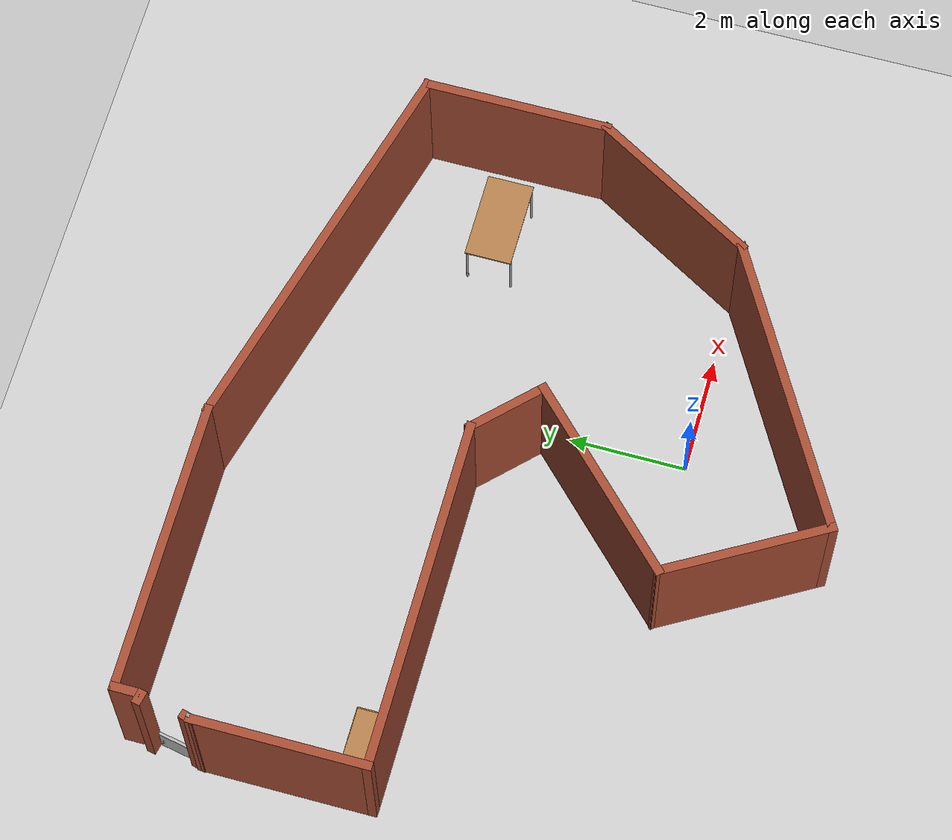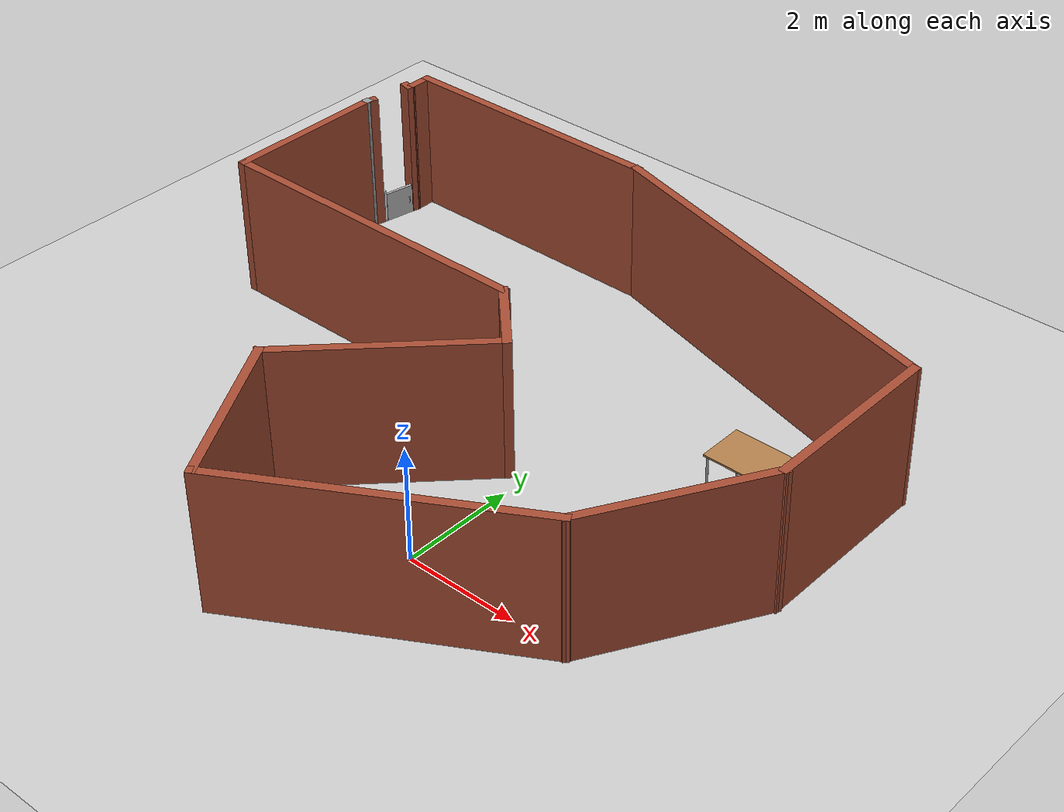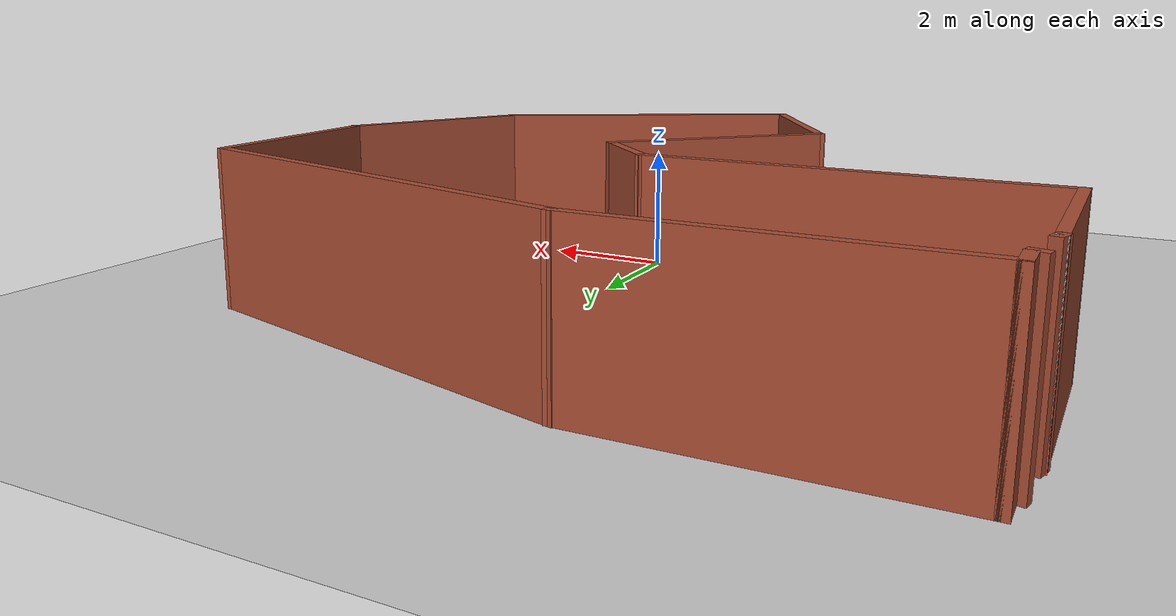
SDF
<sdf version="1.7">
 <world name="default">
  <plugin name="gazebo_occupancy_map" filename="libgazebo_2Dmap_plugin.so">
   <map_resolution>0.05</map_resolution>
   <map_height>0.132</map_height>
   <map_size_x>15</map_size_x>
   <map_size_y>15</map_size_y>
   <init_robot_x>-2.0</init_robot_x>
   <init_robot_y>-0.5</init_robot_y>
  </plugin>
  <light name="sun" type="directional">
   <pose>0 0 10 0 -0 0</pose>
   <diffuse>0.8 0.8 0.8 1</diffuse>
   <specular>0.2 0.2 0.2 1</specular>
   <attenuation>
    <range>1000</range>
    <constant>0.9</constant>
    <linear>0.01</linear>
    <quadratic>0.001</quadratic>
   </attenuation>
   <direction>-0.5 0.1 -0.9</direction>
   <spot><inner_angle>0</inner_angle><outer_angle>0</outer_angle><falloff>0</falloff></spot>
  </light>
  <model name="ground_plane">
   <static>1</static>
   <link name="link">
    <collision name="collision">
     <geometry><plane><normal>0 0 1</normal><size>100 100</size></plane></geometry>
     <surface>
      <contact><collide_bitmask>65535</collide_bitmask></contact>
      <friction><ode><mu>100</mu><mu2>50</mu2></ode></friction>
     </surface>
    </collision>
    <visual name="visual">
     <cast_shadows>0</cast_shadows>
     <geometry><plane><normal>0 0 1</normal><size>100 100</size></plane></geometry>
     <material>
      <script><uri>file://media/materials/scripts/gazebo.material</uri><name>Gazebo/Grey</name></script>
     </material>
    </visual>
   </link>
  </model>
  <gravity>0 0 -9.8</gravity>
  <magnetic_field>6e-06 2.3e-05 -4.2e-05</magnetic_field>
  <atmosphere type="adiabatic"/>
  <physics type="ode">
   <max_step_size>0.001</max_step_size>
   <real_time_factor>1</real_time_factor>
   <real_time_update_rate>1000</real_time_update_rate>
  </physics>
  <scene><ambient>0.4 0.4 0.4 1</ambient><background>0.7 0.7 0.7 1</background><shadows>1</shadows></scene>
  <spherical_coordinates>
   <surface_model>EARTH_WGS84</surface_model>
   <latitude_deg>0</latitude_deg>
   <longitude_deg>0</longitude_deg>
   <elevation>0</elevation>
   <heading_deg>0</heading_deg>
  </spherical_coordinates>
  <model name="c-shaped-room">
   <pose>-1.22776 2.48123 0 0 -0 0</pose>
   <link name="Wall_0">
    <collision name="Wall_0_Collision">
     <geometry><box><size>0.5 0.15 2.5</size></box></geometry>
     <pose>0 0 1.25 0 -0 0</pose>
    </collision>
    <visual name="Wall_0_Visual">
     <pose>0 0 1.25 0 -0 0</pose>
     <geometry><box><size>0.5 0.15 2.5</size></box></geometry>
     <material>
      <script><uri>file://media/materials/scripts/gazebo.material</uri><name>Gazebo/Bricks</name></script>
      <ambient>1 1 1 1</ambient>
     </material>
     <meta><layer>0</layer></meta>
    </visual>
    <pose>-5.64652 4.83002 0 0 -0 1.5708</pose>
   </link>
   <link name="Wall_1">
    <collision name="Wall_1_Collision">
     <geometry><box><size>5 0.15 2.5</size></box></geometry>
     <pose>0 0 1.25 0 -0 0</pose>
    </collision>
    <visual name="Wall_1_Visual">
     <pose>0 0 1.25 0 -0 0</pose>
     <geometry><box><size>5 0.15 2.5</size></box></geometry>
     <material>
      <script><uri>file://media/materials/scripts/gazebo.material</uri><name>Gazebo/Bricks</name></script>
      <ambient>1 1 1 1</ambient>
     </material>
     <meta><layer>0</layer></meta>
    </visual>
    <pose>-3.22152 5.00502 0 0 -0 0</pose>
   </link>
   <link name="Wall_10">
    <collision name="Wall_10_Collision">
     <geometry><box><size>3 0.15 2.5</size></box></geometry>
     <pose>0 0 1.25 0 -0 0</pose>
    </collision>
    <visual name="Wall_10_Visual">
     <pose>0 0 1.25 0 -0 0</pose>
     <geometry><box><size>3 0.15 2.5</size></box></geometry>
     <material>
      <script><uri>file://media/materials/scripts/gazebo.material</uri><name>Gazebo/Bricks</name></script>
      <ambient>1 1 1 1</ambient>
     </material>
     <meta><layer>0</layer></meta>
    </visual>
    <pose>-5.83067 2.29078 0 0 -0 1.5708</pose>
   </link>
   <link name="Wall_11">
    <collision name="Wall_11_Collision">
     <geometry><box><size>0.15 0.15 2.5</size></box></geometry>
     <pose>0 0 1.25 0 -0 0</pose>
    </collision>
    <visual name="Wall_11_Visual">
     <pose>0 0 1.25 0 -0 0</pose>
     <geometry><box><size>0.15 0.15 2.5</size></box></geometry>
     <material>
      <script><uri>file://media/materials/scripts/gazebo.material</uri><name>Gazebo/Grey</name></script>
      <ambient>1 1 1 1</ambient>
     </material>
     <meta><layer>0</layer></meta>
    </visual>
    <pose>-5.83067 3.71578 0 0 -0 0</pose>
   </link>
   <link name="Wall_12">
    <collision name="Wall_12_Collision">
     <geometry><box><size>0.25 0.15 2.5</size></box></geometry>
     <pose>0 0 1.25 0 -0 0</pose>
    </collision>
    <visual name="Wall_12_Visual">
     <pose>0 0 1.25 0 -0 0</pose>
     <geometry><box><size>0.25 0.15 2.5</size></box></geometry>
     <material>
      <script><uri>file://media/materials/scripts/gazebo.material</uri><name>Gazebo/Bricks</name></script>
      <ambient>1 1 1 1</ambient>
     </material>
     <meta><layer>0</layer></meta>
    </visual>
    <pose>-5.81773 3.76408 0 0 -0 1.309</pose>
   </link>
   <link name="Wall_2">
    <collision name="Wall_2_Collision">
     <geometry><box><size>7 0.15 2.5</size></box></geometry>
     <pose>0 0 1.25 0 -0 0</pose>
    </collision>
    <visual name="Wall_2_Visual">
     <pose>0 0 1.25 0 -0 0</pose>
     <geometry><box><size>7 0.15 2.5</size></box></geometry>
     <material>
      <script><uri>file://media/materials/scripts/gazebo.material</uri><name>Gazebo/Bricks</name></script>
      <ambient>1 1 1 1</ambient>
     </material>
     <meta><layer>0</layer></meta>
    </visual>
    <pose>2.51178 4.11857 0 0 -0 -0.261799</pose>
   </link>
   <link name="Wall_3">
    <collision name="Wall_3_Collision">
     <geometry><box><size>3.25 0.15 2.5</size></box></geometry>
     <pose>0 0 1.25 0 -0 0</pose>
    </collision>
    <visual name="Wall_3_Visual">
     <pose>0 0 1.25 0 -0 0</pose>
     <geometry><box><size>3.25 0.15 2.5</size></box></geometry>
     <material>
      <script><uri>file://media/materials/scripts/gazebo.material</uri><name>Gazebo/Bricks</name></script>
      <ambient>1 1 1 1</ambient>
     </material>
     <meta><layer>0</layer></meta>
    </visual>
    <pose>5.82007 1.68211 0 0 -0 -1.5708</pose>
   </link>
   <link name="Wall_4">
    <collision name="Wall_4_Collision">
     <geometry><box><size>3.25 0.15 2.5</size></box></geometry>
     <pose>0 0 1.25 0 -0 0</pose>
    </collision>
    <visual name="Wall_4_Visual">
     <pose>0 0 1.25 0 -0 0</pose>
     <geometry><box><size>3.25 0.15 2.5</size></box></geometry>
     <material>
      <script><uri>file://media/materials/scripts/gazebo.material</uri><name>Gazebo/Bricks</name></script>
      <ambient>1 1 1 1</ambient>
     </material>
     <meta><layer>0</layer></meta>
    </visual>
    <pose>5.04507 -1.21023 0 0 -0 -2.0944</pose>
   </link>
   <link name="Wall_5">
    <collision name="Wall_5_Collision">
     <geometry><box><size>5.25 0.15 2.5</size></box></geometry>
     <pose>0 0 1.25 0 -0 0</pose>
    </collision>
    <visual name="Wall_5_Visual">
     <pose>0 0 1.25 0 -0 0</pose>
     <geometry><box><size>5.25 0.15 2.5</size></box></geometry>
     <material>
      <script><uri>file://media/materials/scripts/gazebo.material</uri><name>Gazebo/Bricks</name></script>
      <ambient>1 1 1 1</ambient>
     </material>
     <meta><layer>0</layer></meta>
    </visual>
    <pose>2.06171 -3.82757 0 0 -0 -2.61799</pose>
   </link>
   <link name="Wall_6">
    <collision name="Wall_6_Collision">
     <geometry><box><size>3 0.15 2.5</size></box></geometry>
     <pose>0 0 1.25 0 -0 0</pose>
    </collision>
    <visual name="Wall_6_Visual">
     <pose>0 0 1.25 0 -0 0</pose>
     <geometry><box><size>3 0.15 2.5</size></box></geometry>
     <material>
      <script><uri>file://media/materials/scripts/gazebo.material</uri><name>Gazebo/Bricks</name></script>
      <ambient>1 1 1 1</ambient>
     </material>
     <meta><layer>0</layer></meta>
    </visual>
    <pose>-0.859158 -3.86848 0 0 -0 2.0944</pose>
   </link>
   <link name="Wall_7">
    <collision name="Wall_7_Collision">
     <geometry><box><size>3.75 0.15 2.5</size></box></geometry>
     <pose>0 0 1.25 0 -0 0</pose>
    </collision>
    <visual name="Wall_7_Visual">
     <pose>0 0 1.25 0 -0 0</pose>
     <geometry><box><size>3.75 0.15 2.5</size></box></geometry>
     <material>
      <script><uri>file://media/materials/scripts/gazebo.material</uri><name>Gazebo/Bricks</name></script>
      <ambient>1 1 1 1</ambient>
     </material>
     <meta><layer>0</layer></meta>
    </visual>
    <pose>-0.298866 -1.3616 0 0 -0 0.785398</pose>
   </link>
   <link name="Wall_8">
    <collision name="Wall_8_Collision">
     <geometry><box><size>1.5 0.15 2.5</size></box></geometry>
     <pose>0 0 1.25 0 -0 0</pose>
    </collision>
    <visual name="Wall_8_Visual">
     <pose>0 0 1.25 0 -0 0</pose>
     <geometry><box><size>1.5 0.15 2.5</size></box></geometry>
     <material>
      <script><uri>file://media/materials/scripts/gazebo.material</uri><name>Gazebo/Bricks</name></script>
      <ambient>1 1 1 1</ambient>
     </material>
     <meta><layer>0</layer></meta>
    </visual>
    <pose>0.49663 0.388485 0 0 -0 2.35619</pose>
   </link>
   <link name="Wall_9">
    <collision name="Wall_9_Collision">
     <geometry><box><size>6 0.15 2.5</size></box></geometry>
     <pose>0 0 1.25 0 -0 0</pose>
    </collision>
    <visual name="Wall_9_Visual">
     <pose>0 0 1.25 0 -0 0</pose>
     <geometry><box><size>6 0.15 2.5</size></box></geometry>
     <material>
      <script><uri>file://media/materials/scripts/gazebo.material</uri><name>Gazebo/Bricks</name></script>
      <ambient>1 1 1 1</ambient>
     </material>
     <meta><layer>0</layer></meta>
    </visual>
    <pose>-2.90567 0.865782 0 0 -0 3.14159</pose>
   </link>
   <static>1</static>
  </model>
  <model name="table">
   <static>1</static>
   <link name="link">
    <collision name="surface">
     <pose>0 0 1 0 -0 0</pose>
     <geometry><box><size>1.5 0.8 0.03</size></box></geometry>
     <surface><friction><ode><mu>0.6</mu><mu2>0.6</mu2></ode></friction></surface>
    </collision>
    <visual name="visual1">
     <pose>0 0 1 0 -0 0</pose>
     <geometry><box><size>1.5 0.8 0.03</size></box></geometry>
     <material>
      <script><uri>file://media/materials/scripts/gazebo.material</uri><name>Gazebo/Wood</name></script>
     </material>
    </visual>
    <collision name="front_left_leg">
     <pose>0.68 0.38 0.5 0 -0 0</pose>
     <geometry><cylinder><radius>0.02</radius><length>1</length></cylinder></geometry>
    </collision>
    <visual name="front_left_leg">
     <pose>0.68 0.38 0.5 0 -0 0</pose>
     <geometry><cylinder><radius>0.02</radius><length>1</length></cylinder></geometry>
     <material>
      <script><uri>file://media/materials/scripts/gazebo.material</uri><name>Gazebo/Grey</name></script>
     </material>
    </visual>
    <collision name="front_right_leg">
     <pose>0.68 -0.38 0.5 0 -0 0</pose>
     <geometry><cylinder><radius>0.02</radius><length>1</length></cylinder></geometry>
    </collision>
    <visual name="front_right_leg">
     <pose>0.68 -0.38 0.5 0 -0 0</pose>
     <geometry><cylinder><radius>0.02</radius><length>1</length></cylinder></geometry>
     <material>
      <script><uri>file://media/materials/scripts/gazebo.material</uri><name>Gazebo/Grey</name></script>
     </material>
    </visual>
    <collision name="back_right_leg">
     <pose>-0.68 -0.38 0.5 0 -0 0</pose>
     <geometry><cylinder><radius>0.02</radius><length>1</length></cylinder></geometry>
    </collision>
    <visual name="back_right_leg">
     <pose>-0.68 -0.38 0.5 0 -0 0</pose>
     <geometry><cylinder><radius>0.02</radius><length>1</length></cylinder></geometry>
     <material>
      <script><uri>file://media/materials/scripts/gazebo.material</uri><name>Gazebo/Grey</name></script>
     </material>
    </visual>
    <collision name="back_left_leg">
     <pose>-0.68 0.38 0.5 0 -0 0</pose>
     <geometry><cylinder><radius>0.02</radius><length>1</length></cylinder></geometry>
    </collision>
    <visual name="back_left_leg">
     <pose>-0.68 0.38 0.5 0 -0 0</pose>
     <geometry><cylinder><radius>0.02</radius><length>1</length></cylinder></geometry>
     <material>
      <script><uri>file://media/materials/scripts/gazebo.material</uri><name>Gazebo/Grey</name></script>
     </material>
    </visual>
   </link>
   <pose>3.17803 4.084 0 0 -0 0</pose>
  </model>
  <model name="bookshelf">
   <static>1</static>
   <link name="link">
    <inertial><mass>1</mass></inertial>
    <collision name="back">
     <pose>0 0.005 0.6 0 -0 0</pose>
     <geometry><box><size>0.9 0.01 1.2</size></box></geometry>
    </collision>
    <visual name="visual1">
     <pose>0 0.005 0.6 0 -0 0</pose>
     <geometry><box><size>0.9 0.01 1.2</size></box></geometry>
     <material>
      <script><uri>file://media/materials/scripts/gazebo.material</uri><name>Gazebo/Wood</name></script>
     </material>
    </visual>
    <collision name="left_side">
     <pose>0.45 -0.195 0.6 0 -0 0</pose>
     <geometry><box><size>0.02 0.4 1.2</size></box></geometry>
    </collision>
    <visual name="visual2">
     <pose>0.45 -0.195 0.6 0 -0 0</pose>
     <geometry><box><size>0.02 0.4 1.2</size></box></geometry>
     <material>
      <script><uri>file://media/materials/scripts/gazebo.material</uri><name>Gazebo/Wood</name></script>
     </material>
    </visual>
    <collision name="right_side">
     <pose>-0.45 -0.195 0.6 0 -0 0</pose>
     <geometry><box><size>0.02 0.4 1.2</size></box></geometry>
    </collision>
    <visual name="visual3">
     <pose>-0.45 -0.195 0.6 0 -0 0</pose>
     <geometry><box><size>0.02 0.4 1.2</size></box></geometry>
     <material>
      <script><uri>file://media/materials/scripts/gazebo.material</uri><name>Gazebo/Wood</name></script>
     </material>
    </visual>
    <collision name="bottom">
     <pose>0 -0.195 0.03 0 -0 0</pose>
     <geometry><box><size>0.88 0.4 0.06</size></box></geometry>
    </collision>
    <visual name="visual4">
     <pose>0 -0.195 0.03 0 -0 0</pose>
     <geometry><box><size>0.88 0.4 0.06</size></box></geometry>
     <material>
      <script><uri>file://media/materials/scripts/gazebo.material</uri><name>Gazebo/Wood</name></script>
     </material>
    </visual>
    <collision name="top">
     <pose>0 -0.195 1.19 0 -0 0</pose>
     <geometry><box><size>0.88 0.4 0.02</size></box></geometry>
    </collision>
    <visual name="visual5">
     <pose>0 -0.195 1.19 0 -0 0</pose>
     <geometry><box><size>0.88 0.4 0.02</size></box></geometry>
     <material>
      <script><uri>file://media/materials/scripts/gazebo.material</uri><name>Gazebo/Wood</name></script>
     </material>
    </visual>
    <collision name="low_shelf">
     <pose>0 -0.195 0.43 0 -0 0</pose>
     <geometry><box><size>0.88 0.4 0.02</size></box></geometry>
    </collision>
    <visual name="visual6">
     <pose>0 -0.195 0.43 0 -0 0</pose>
     <geometry><box><size>0.88 0.4 0.02</size></box></geometry>
     <material>
      <script><uri>file://media/materials/scripts/gazebo.material</uri><name>Gazebo/Wood</name></script>
     </material>
    </visual>
    <collision name="high_shelf">
     <pose>0 -0.195 0.8 0 -0 0</pose>
     <geometry><box><size>0.88 0.4 0.02</size></box></geometry>
    </collision>
    <visual name="visual7">
     <pose>0 -0.195 0.8 0 -0 0</pose>
     <geometry><box><size>0.88 0.4 0.02</size></box></geometry>
     <material>
      <script><uri>file://media/materials/scripts/gazebo.material</uri><name>Gazebo/Wood</name></script>
     </material>
    </visual>
   </link>
   <pose>-6.25741 3.93008 0 0 -0 0</pose>
  </model>
  <model name="door-model">
   <link name="door">
    <inertial>
     <mass>20</mass>
     <inertia>
      <ixx>4.53808</ixx>
      <ixy>0</ixy>
      <ixz>0</ixz>
      <iyy>4.54003</iyy>
      <iyz>0</iyz>
      <izz>0.0512722</izz>
     </inertia>
    </inertial>
    <gravity>0</gravity>
    <visual name="visual">
     <geometry><mesh><uri>model://door-model/./Door.dae</uri><scale>0.001 0.001 0.001</scale></mesh></geometry>
    </visual>
    <collision name="collision">
     <geometry><mesh><uri>model://door-model/./Door.dae</uri><scale>0.001 0.001 0.001</scale></mesh></geometry>
     <surface>
      <friction>
       <ode><mu>1</mu><mu2>1</mu2><fdir1>0 0 0</fdir1><slip1>0</slip1><slip2>0</slip2></ode>
       <torsional>
        <coefficient>1</coefficient>
        <patch_radius>0</patch_radius>
        <surface_radius>0</surface_radius>
        <use_patch_radius>1</use_patch_radius>
        <ode><slip>0</slip></ode>
       </torsional>
      </friction>
      <bounce><restitution_coefficient>0</restitution_coefficient><threshold>1e+06</threshold></bounce>
      <contact>
       <collide_without_contact>0</collide_without_contact>
       <collide_without_contact_bitmask>1</collide_without_contact_bitmask>
       <collide_bitmask>1</collide_bitmask>
       <ode>
        <soft_cfm>0</soft_cfm>
        <soft_erp>0.2</soft_erp>
        <kp>1e+13</kp>
        <kd>1</kd>
        <max_vel>0.01</max_vel>
        <min_depth>0</min_depth>
       </ode>
       <bullet>
        <split_impulse>1</split_impulse>
        <split_impulse_penetration_threshold>-0.01</split_impulse_penetration_threshold>
        <soft_cfm>0</soft_cfm>
        <soft_erp>0.2</soft_erp>
        <kp>1e+13</kp>
        <kd>1</kd>
       </bullet>
      </contact>
     </surface>
    </collision>
   </link>
   <link name="pole">
    <inertial>
     <mass>100</mass>
     <inertia>
      <ixx>0.001</ixx>
      <ixy>0.001</ixy>
      <ixz>0.001</ixz>
      <iyy>0.001</iyy>
      <iyz>0.001</iyz>
      <izz>0.001</izz>
     </inertia>
    </inertial>
    <pose>-0.02632 0 0.308096 0 -0 0</pose>
    <gravity>0</gravity>
    <kinematic>1</kinematic>
    <visual name="visual">
     <geometry><box><size>0.048276 0.0462 0.625074</size></box></geometry>
     <material>
      <lighting>1</lighting>
      <script><uri>file://media/materials/scripts/gazebo.material</uri><name>Gazebo/White</name></script>
      <ambient>1 1 1 1</ambient>
     </material>
    </visual>
    <collision name="collision">
     <geometry><box><size>0.048 0.046201 0.625074</size></box></geometry>
     <surface>
      <friction>
       <ode><mu>1</mu><mu2>1</mu2><fdir1>0 0 0</fdir1><slip1>0</slip1><slip2>0</slip2></ode>
       <torsional>
        <coefficient>1</coefficient>
        <patch_radius>0</patch_radius>
        <surface_radius>0</surface_radius>
        <use_patch_radius>1</use_patch_radius>
        <ode><slip>0</slip></ode>
       </torsional>
      </friction>
      <bounce><restitution_coefficient>0</restitution_coefficient><threshold>1e+06</threshold></bounce>
      <contact>
       <collide_without_contact>0</collide_without_contact>
       <collide_without_contact_bitmask>1</collide_without_contact_bitmask>
       <collide_bitmask>1</collide_bitmask>
       <ode>
        <soft_cfm>0</soft_cfm>
        <soft_erp>0.2</soft_erp>
        <kp>1e+13</kp>
        <kd>1</kd>
        <max_vel>0.01</max_vel>
        <min_depth>0</min_depth>
       </ode>
       <bullet>
        <split_impulse>1</split_impulse>
        <split_impulse_penetration_threshold>-0.01</split_impulse_penetration_threshold>
        <soft_cfm>0</soft_cfm>
        <soft_erp>0.2</soft_erp>
        <kp>1e+13</kp>
        <kd>1</kd>
       </bullet>
      </contact>
     </surface>
    </collision>
   </link>
   <joint name="hinge" type="revolute">
    <parent>pole</parent>
    <child>door</child>
    <pose>0 0 0.3 0 -0 0</pose>
    <axis>
     <xyz>0 0 1</xyz>
     <limit><lower>-1.74533</lower><upper>1.74533</upper><effort>3900</effort><velocity>0.62</velocity></limit>
     <dynamics>
      <spring_reference>0</spring_reference>
      <spring_stiffness>0</spring_stiffness>
      <damping>0.1</damping>
      <friction>0.1</friction>
     </dynamics>
    </axis>
    <physics>
     <ode><limit><cfm>0</cfm><erp>0.2</erp></limit><suspension><cfm>0</cfm><erp>0.2</erp></suspension></ode>
    </physics>
   </joint>
   <static>0</static>
   <pose>-6.96221 6.41127 0 0 -0 1.3828</pose>
  </model>
  <model name="gap-filler">
   <pose>-4.91088 9.77329 0 0 0 -0.216897</pose>
   <link name="Wall_4">
    <collision name="Wall_4_Collision">
     <geometry><box><size>0.25 0.15 2.5</size></box></geometry>
     <pose>0 0 1.25 0 -0 0</pose>
    </collision>
    <visual name="Wall_4_Visual">
     <pose>0 0 1.25 0 -0 0</pose>
     <geometry><box><size>0.25 0.15 2.5</size></box></geometry>
     <material>
      <script><uri>file://media/materials/scripts/gazebo.material</uri><name>Gazebo/Bricks</name></script>
      <ambient>1 1 1 1</ambient>
     </material>
     <meta><layer>0</layer></meta>
    </visual>
    <pose>-1.38938 -3.0906 0 0 -0 3.14159</pose>
   </link>
   <static>1</static>
  </model>
 </world>
</sdf>
